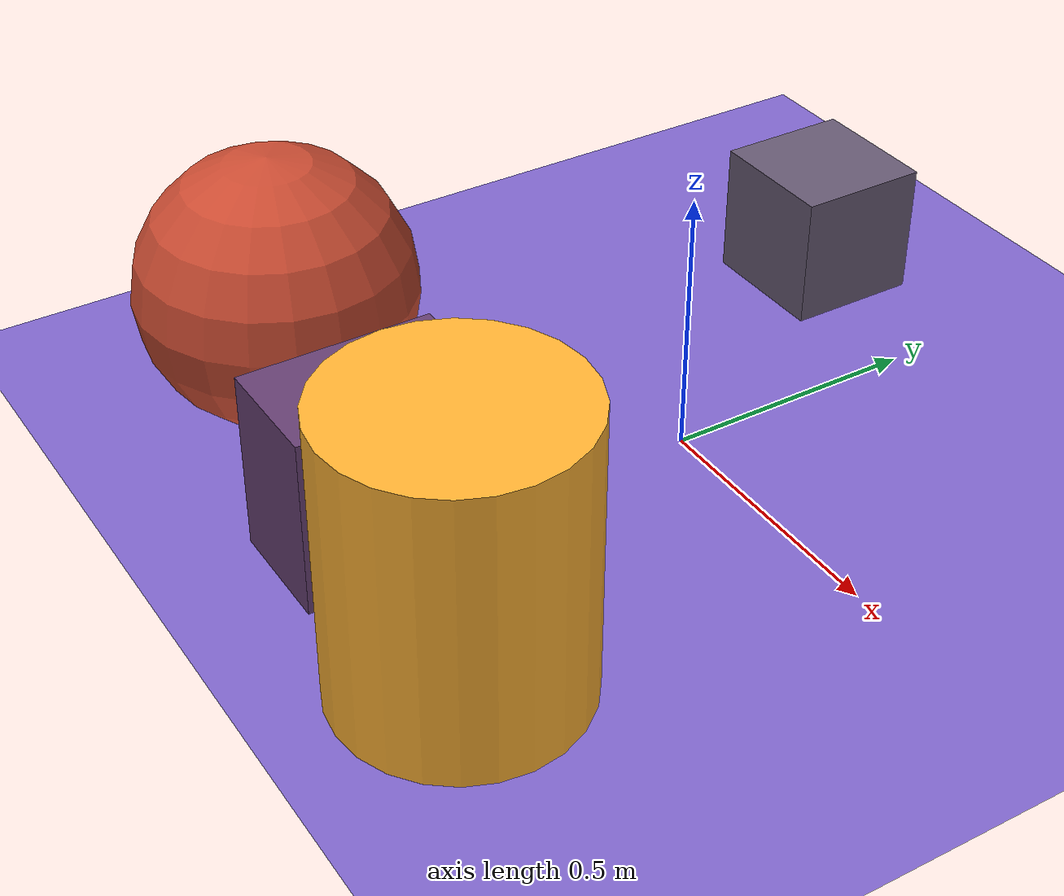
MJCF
<mujoco>
   <asset>
<texture type="skybox" builtin="gradient" rgb1="0.1 0.4 0.3" rgb2="0.0 0.7 0.7" width="256" height="256"/>
<texture name="checker_0" builtin="checker" type="2d" rgb1="0.8 0.1 0.7" rgb2="0.0 0.6 0.2" width="200" height="200"/>
<texture name="flat_1" builtin="flat" rgb1="1.0 0.7 0.2" rgb2="1.0 0.7 0.2"  width="200" height="200"/>
<texture name="flat_2" builtin="flat" rgb1="0.8 0.3 0.2" rgb2="0.8 0.3 0.2"  width="200" height="200"/>
<texture name="checker_3" builtin="checker" type="2d" rgb1="0.6 0.3 0.4" rgb2="0.2 0.2 0.5" width="200" height="200"/><material name="checker_0_mat" reflectance="0" texrepeat="7 7" texture="checker_0" texuniform="false" />
<material name="flat_1_mat" reflectance="0" texture="flat_1" texuniform="true"/>
<material name="flat_2_mat" reflectance="0" texture="flat_2" texuniform="true"/>
<material name="checker_3_mat" reflectance="0" texrepeat="4 4" texture="checker_3" texuniform="false" />
   </asset>

   <worldbody>
      <light diffuse=".9 .9 .9" pos="0 0 3" dir="0 0 -1"/>
     <geom type="plane" size="1 1 0.1" rgba="0.5 0.4 0.8 1"/>
<geom type="box" pos="-0.33 0.56 0.13" size="0.13 0.13 0.13" material="checker_0_mat" />
<geom type="cylinder" pos="0.34 -0.66 0.27" size="0.22 0.27 0.27" material="flat_1_mat" />
<geom type="sphere" pos="-0.48 -0.56 0.26" size="0.26 0.26 0.26" material="flat_2_mat" />
<geom type="box" pos="-0.04 -0.61 0.17" size="0.11 0.18 0.17" material="checker_3_mat" /><camera euler="60 0 180" fovy="60" name="camera_a" pos="0 -1.5 1"></camera>   </worldbody>
</mujoco>
